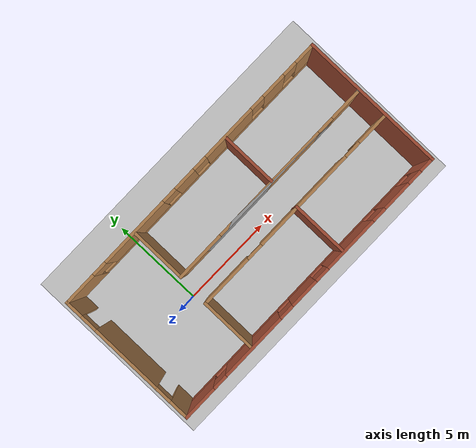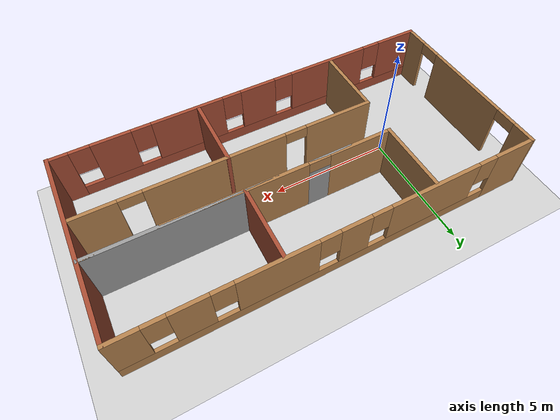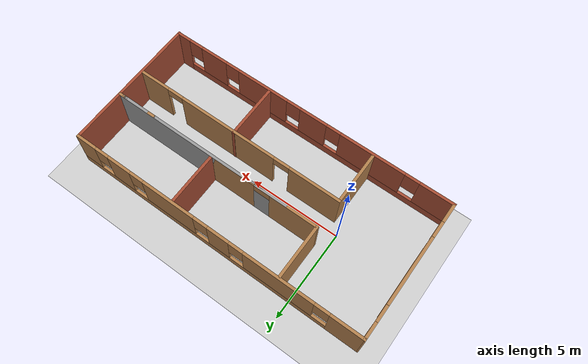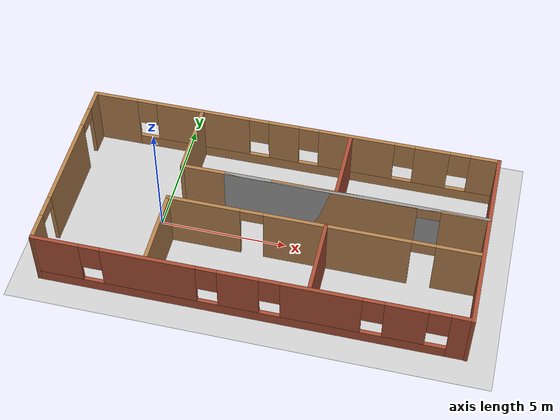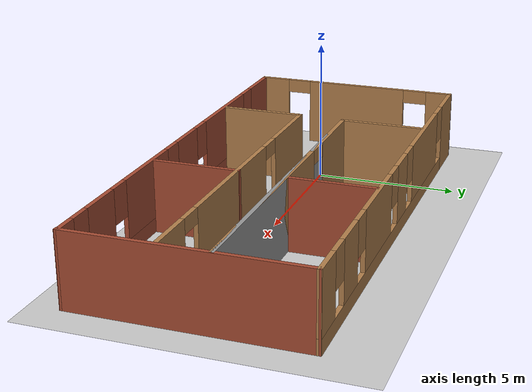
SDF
<sdf version="1.7">
 <world name="default">
  <light name="sun" type="directional">
   <pose>0 0 10 0 -0 0</pose>
   <diffuse>0.8 0.8 0.8 1</diffuse>
   <specular>0.2 0.2 0.2 1</specular>
   <attenuation>
    <range>1000</range>
    <constant>0.9</constant>
    <linear>0.01</linear>
    <quadratic>0.001</quadratic>
   </attenuation>
   <direction>-0.5 0.1 -0.9</direction>
   <spot><inner_angle>0</inner_angle><outer_angle>0</outer_angle><falloff>0</falloff></spot>
  </light>
  <model name="ground_plane">
   <static>1</static>
   <link name="link">
    <collision name="collision">
     <geometry><plane><normal>0 0 1</normal><size>100 100</size></plane></geometry>
     <surface><friction><ode><mu>100</mu><mu2>50</mu2></ode></friction></surface>
    </collision>
    <visual name="visual">
     <cast_shadows>0</cast_shadows>
     <geometry><plane><normal>0 0 1</normal><size>100 100</size></plane></geometry>
     <material>
      <script><uri>file://media/materials/scripts/gazebo.material</uri><name>Gazebo/Grey</name></script>
     </material>
    </visual>
   </link>
  </model>
  <gravity>0 0 -9.8</gravity>
  <magnetic_field>6e-06 2.3e-05 -4.2e-05</magnetic_field>
  <atmosphere type="adiabatic"/>
  <physics type="ode">
   <max_step_size>0.001</max_step_size>
   <real_time_factor>1</real_time_factor>
   <real_time_update_rate>1000</real_time_update_rate>
  </physics>
  <scene><ambient>0.4 0.4 0.4 1</ambient><background>0.7 0.7 0.7 1</background><shadows>1</shadows></scene>
  <spherical_coordinates>
   <surface_model>EARTH_WGS84</surface_model>
   <latitude_deg>0</latitude_deg>
   <longitude_deg>0</longitude_deg>
   <elevation>0</elevation>
   <heading_deg>0</heading_deg>
  </spherical_coordinates>
  <model name="newmodel_hosp">
   <pose>4.38139 0.212327 0 0 -0 0</pose>
   <link name="Wall_33">
    <pose>-0 3.8 0 0 -0 0.002139</pose>
    <visual name="Wall_33_Visual_0">
     <pose>-7.33684 0 1.25 0 -0 0</pose>
     <geometry><box><size>1.82633 0.15 2.5</size></box></geometry>
     <material>
      <script><uri>file://media/materials/scripts/gazebo.material</uri><name>Gazebo/Wood</name></script>
      <ambient>1 1 1 1</ambient>
     </material>
     <meta><layer>0</layer></meta>
    </visual>
    <collision name="Wall_33_Collision_0">
     <geometry><box><size>1.82633 0.15 2.5</size></box></geometry>
     <pose>-7.33684 0 1.25 0 -0 0</pose>
    </collision>
    <visual name="Wall_33_Visual_1">
     <pose>0.913164 0 0.25 0 -0 0</pose>
     <geometry><box><size>14.6737 0.15 0.5</size></box></geometry>
     <material>
      <script><uri>file://media/materials/scripts/gazebo.material</uri><name>Gazebo/Wood</name></script>
      <ambient>1 1 1 1</ambient>
     </material>
     <meta><layer>0</layer></meta>
    </visual>
    <collision name="Wall_33_Collision_1">
     <geometry><box><size>14.6737 0.15 0.5</size></box></geometry>
     <pose>0.913164 0 0.25 0 -0 0</pose>
    </collision>
    <visual name="Wall_33_Visual_2">
     <pose>-3.69759 0 1.5 0 -0 0</pose>
     <geometry><box><size>3.85216 0.15 2</size></box></geometry>
     <material>
      <script><uri>file://media/materials/scripts/gazebo.material</uri><name>Gazebo/Wood</name></script>
      <ambient>1 1 1 1</ambient>
     </material>
     <meta><layer>0</layer></meta>
    </visual>
    <collision name="Wall_33_Collision_2">
     <geometry><box><size>3.85216 0.15 2</size></box></geometry>
     <pose>-3.69759 0 1.5 0 -0 0</pose>
    </collision>
    <visual name="Wall_33_Visual_3">
     <pose>-0.357016 0 1.5 0 -0 0</pose>
     <geometry><box><size>1.22899 0.15 2</size></box></geometry>
     <material>
      <script><uri>file://media/materials/scripts/gazebo.material</uri><name>Gazebo/Wood</name></script>
      <ambient>1 1 1 1</ambient>
     </material>
     <meta><layer>0</layer></meta>
    </visual>
    <collision name="Wall_33_Collision_3">
     <geometry><box><size>1.22899 0.15 2</size></box></geometry>
     <pose>-0.357016 0 1.5 0 -0 0</pose>
    </collision>
    <visual name="Wall_33_Visual_4">
     <pose>2.57254 0 1.5 0 -0 0</pose>
     <geometry><box><size>3.03013 0.15 2</size></box></geometry>
     <material>
      <script><uri>file://media/materials/scripts/gazebo.material</uri><name>Gazebo/Wood</name></script>
      <ambient>1 1 1 1</ambient>
     </material>
     <meta><layer>0</layer></meta>
    </visual>
    <collision name="Wall_33_Collision_4">
     <geometry><box><size>3.03013 0.15 2</size></box></geometry>
     <pose>2.57254 0 1.5 0 -0 0</pose>
    </collision>
    <visual name="Wall_33_Visual_5">
     <pose>5.5721 0 1.5 0 -0 0</pose>
     <geometry><box><size>1.36899 0.15 2</size></box></geometry>
     <material>
      <script><uri>file://media/materials/scripts/gazebo.material</uri><name>Gazebo/Wood</name></script>
      <ambient>1 1 1 1</ambient>
     </material>
     <meta><layer>0</layer></meta>
    </visual>
    <collision name="Wall_33_Collision_5">
     <geometry><box><size>1.36899 0.15 2</size></box></geometry>
     <pose>5.5721 0 1.5 0 -0 0</pose>
    </collision>
    <visual name="Wall_33_Visual_6">
     <pose>7.6533 0 1.5 0 -0 0</pose>
     <geometry><box><size>1.19341 0.15 2</size></box></geometry>
     <material>
      <script><uri>file://media/materials/scripts/gazebo.material</uri><name>Gazebo/Wood</name></script>
      <ambient>1 1 1 1</ambient>
     </material>
     <meta><layer>0</layer></meta>
    </visual>
    <collision name="Wall_33_Collision_6">
     <geometry><box><size>1.19341 0.15 2</size></box></geometry>
     <pose>7.6533 0 1.5 0 -0 0</pose>
    </collision>
    <visual name="Wall_33_Visual_7">
     <pose>-6.02367 0 1.9 0 -0 0</pose>
     <geometry><box><size>0.8 0.15 1.2</size></box></geometry>
     <material>
      <script><uri>file://media/materials/scripts/gazebo.material</uri><name>Gazebo/Wood</name></script>
      <ambient>1 1 1 1</ambient>
     </material>
     <meta><layer>0</layer></meta>
    </visual>
    <collision name="Wall_33_Collision_7">
     <geometry><box><size>0.8 0.15 1.2</size></box></geometry>
     <pose>-6.02367 0 1.9 0 -0 0</pose>
    </collision>
    <visual name="Wall_33_Visual_8">
     <pose>-1.37151 0 1.9 0 -0 0</pose>
     <geometry><box><size>0.8 0.15 1.2</size></box></geometry>
     <material>
      <script><uri>file://media/materials/scripts/gazebo.material</uri><name>Gazebo/Wood</name></script>
      <ambient>1 1 1 1</ambient>
     </material>
     <meta><layer>0</layer></meta>
    </visual>
    <collision name="Wall_33_Collision_8">
     <geometry><box><size>0.8 0.15 1.2</size></box></geometry>
     <pose>-1.37151 0 1.9 0 -0 0</pose>
    </collision>
    <visual name="Wall_33_Visual_9">
     <pose>0.65748 0 1.9 0 -0 0</pose>
     <geometry><box><size>0.8 0.15 1.2</size></box></geometry>
     <material>
      <script><uri>file://media/materials/scripts/gazebo.material</uri><name>Gazebo/Wood</name></script>
      <ambient>1 1 1 1</ambient>
     </material>
     <meta><layer>0</layer></meta>
    </visual>
    <collision name="Wall_33_Collision_9">
     <geometry><box><size>0.8 0.15 1.2</size></box></geometry>
     <pose>0.65748 0 1.9 0 -0 0</pose>
    </collision>
    <visual name="Wall_33_Visual_10">
     <pose>4.48761 0 1.9 0 -0 0</pose>
     <geometry><box><size>0.8 0.15 1.2</size></box></geometry>
     <material>
      <script><uri>file://media/materials/scripts/gazebo.material</uri><name>Gazebo/Wood</name></script>
      <ambient>1 1 1 1</ambient>
     </material>
     <meta><layer>0</layer></meta>
    </visual>
    <collision name="Wall_33_Collision_10">
     <geometry><box><size>0.8 0.15 1.2</size></box></geometry>
     <pose>4.48761 0 1.9 0 -0 0</pose>
    </collision>
    <visual name="Wall_33_Visual_11">
     <pose>6.6566 0 1.9 0 -0 0</pose>
     <geometry><box><size>0.8 0.15 1.2</size></box></geometry>
     <material>
      <script><uri>file://media/materials/scripts/gazebo.material</uri><name>Gazebo/Wood</name></script>
      <ambient>1 1 1 1</ambient>
     </material>
     <meta><layer>0</layer></meta>
    </visual>
    <collision name="Wall_33_Collision_11">
     <geometry><box><size>0.8 0.15 1.2</size></box></geometry>
     <pose>6.6566 0 1.9 0 -0 0</pose>
    </collision>
   </link>
   <link name="Wall_34">
    <collision name="Wall_34_Collision">
     <geometry><box><size>7.75 0.15 2.5</size></box></geometry>
     <pose>0 0 1.25 0 -0 0</pose>
    </collision>
    <visual name="Wall_34_Visual">
     <pose>0 0 1.25 0 -0 0</pose>
     <geometry><box><size>7.75 0.15 2.5</size></box></geometry>
     <material>
      <script><uri>file://media/materials/scripts/gazebo.material</uri><name>Gazebo/Bricks</name></script>
      <ambient>1 1 1 1</ambient>
     </material>
     <meta><layer>0</layer></meta>
    </visual>
    <pose>8.175 -0 0 0 -0 -1.5708</pose>
   </link>
   <link name="Wall_35">
    <pose>-0 -3.8 0 0 -0 -3.13945</pose>
    <visual name="Wall_35_Visual_0">
     <pose>-7.82824 0 1.25 0 -0 0</pose>
     <geometry><box><size>0.843509 0.15 2.5</size></box></geometry>
     <material>
      <script><uri>file://media/materials/scripts/gazebo.material</uri><name>Gazebo/Bricks</name></script>
      <ambient>1 1 1 1</ambient>
     </material>
     <meta><layer>0</layer></meta>
    </visual>
    <collision name="Wall_35_Collision_0">
     <geometry><box><size>0.843509 0.15 2.5</size></box></geometry>
     <pose>-7.82824 0 1.25 0 -0 0</pose>
    </collision>
    <visual name="Wall_35_Visual_1">
     <pose>0.421755 0 0.25 0 -0 0</pose>
     <geometry><box><size>15.6565 0.15 0.5</size></box></geometry>
     <material>
      <script><uri>file://media/materials/scripts/gazebo.material</uri><name>Gazebo/Bricks</name></script>
      <ambient>1 1 1 1</ambient>
     </material>
     <meta><layer>0</layer></meta>
    </visual>
    <collision name="Wall_35_Collision_1">
     <geometry><box><size>15.6565 0.15 0.5</size></box></geometry>
     <pose>0.421755 0 0.25 0 -0 0</pose>
    </collision>
    <visual name="Wall_35_Visual_2">
     <pose>-5.81724 0 1.5 0 -0 0</pose>
     <geometry><box><size>1.57849 0.15 2</size></box></geometry>
     <material>
      <script><uri>file://media/materials/scripts/gazebo.material</uri><name>Gazebo/Bricks</name></script>
      <ambient>1 1 1 1</ambient>
     </material>
     <meta><layer>0</layer></meta>
    </visual>
    <collision name="Wall_35_Collision_2">
     <geometry><box><size>1.57849 0.15 2</size></box></geometry>
     <pose>-5.81724 0 1.5 0 -0 0</pose>
    </collision>
    <visual name="Wall_35_Visual_3">
     <pose>-2.73026 0 1.5 0 -0 0</pose>
     <geometry><box><size>2.99548 0.15 2</size></box></geometry>
     <material>
      <script><uri>file://media/materials/scripts/gazebo.material</uri><name>Gazebo/Bricks</name></script>
      <ambient>1 1 1 1</ambient>
     </material>
     <meta><layer>0</layer></meta>
    </visual>
    <collision name="Wall_35_Collision_3">
     <geometry><box><size>2.99548 0.15 2</size></box></geometry>
     <pose>-2.73026 0 1.5 0 -0 0</pose>
    </collision>
    <visual name="Wall_35_Visual_4">
     <pose>0.34797 0 1.5 0 -0 0</pose>
     <geometry><box><size>1.56097 0.15 2</size></box></geometry>
     <material>
      <script><uri>file://media/materials/scripts/gazebo.material</uri><name>Gazebo/Bricks</name></script>
      <ambient>1 1 1 1</ambient>
     </material>
     <meta><layer>0</layer></meta>
    </visual>
    <collision name="Wall_35_Collision_4">
     <geometry><box><size>1.56097 0.15 2</size></box></geometry>
     <pose>0.34797 0 1.5 0 -0 0</pose>
    </collision>
    <visual name="Wall_35_Visual_5">
     <pose>3.74109 0 1.5 0 -0 0</pose>
     <geometry><box><size>3.62527 0.15 2</size></box></geometry>
     <material>
      <script><uri>file://media/materials/scripts/gazebo.material</uri><name>Gazebo/Bricks</name></script>
      <ambient>1 1 1 1</ambient>
     </material>
     <meta><layer>0</layer></meta>
    </visual>
    <collision name="Wall_35_Collision_5">
     <geometry><box><size>3.62527 0.15 2</size></box></geometry>
     <pose>3.74109 0 1.5 0 -0 0</pose>
    </collision>
    <visual name="Wall_35_Visual_6">
     <pose>7.30186 0 1.5 0 -0 0</pose>
     <geometry><box><size>1.89627 0.15 2</size></box></geometry>
     <material>
      <script><uri>file://media/materials/scripts/gazebo.material</uri><name>Gazebo/Bricks</name></script>
      <ambient>1 1 1 1</ambient>
     </material>
     <meta><layer>0</layer></meta>
    </visual>
    <collision name="Wall_35_Collision_6">
     <geometry><box><size>1.89627 0.15 2</size></box></geometry>
     <pose>7.30186 0 1.5 0 -0 0</pose>
    </collision>
    <visual name="Wall_35_Visual_7">
     <pose>-7.00649 0 1.9 0 -0 0</pose>
     <geometry><box><size>0.8 0.15 1.2</size></box></geometry>
     <material>
      <script><uri>file://media/materials/scripts/gazebo.material</uri><name>Gazebo/Bricks</name></script>
      <ambient>1 1 1 1</ambient>
     </material>
     <meta><layer>0</layer></meta>
    </visual>
    <collision name="Wall_35_Collision_7">
     <geometry><box><size>0.8 0.15 1.2</size></box></geometry>
     <pose>-7.00649 0 1.9 0 -0 0</pose>
    </collision>
    <visual name="Wall_35_Visual_8">
     <pose>-4.628 0 1.9 0 -0 0</pose>
     <geometry><box><size>0.8 0.15 1.2</size></box></geometry>
     <material>
      <script><uri>file://media/materials/scripts/gazebo.material</uri><name>Gazebo/Bricks</name></script>
      <ambient>1 1 1 1</ambient>
     </material>
     <meta><layer>0</layer></meta>
    </visual>
    <collision name="Wall_35_Collision_8">
     <geometry><box><size>0.8 0.15 1.2</size></box></geometry>
     <pose>-4.628 0 1.9 0 -0 0</pose>
    </collision>
    <visual name="Wall_35_Visual_9">
     <pose>-0.832512 0 1.9 0 -0 0</pose>
     <geometry><box><size>0.8 0.15 1.2</size></box></geometry>
     <material>
      <script><uri>file://media/materials/scripts/gazebo.material</uri><name>Gazebo/Bricks</name></script>
      <ambient>1 1 1 1</ambient>
     </material>
     <meta><layer>0</layer></meta>
    </visual>
    <collision name="Wall_35_Collision_9">
     <geometry><box><size>0.8 0.15 1.2</size></box></geometry>
     <pose>-0.832512 0 1.9 0 -0 0</pose>
    </collision>
    <visual name="Wall_35_Visual_10">
     <pose>1.52845 0 1.9 0 -0 0</pose>
     <geometry><box><size>0.8 0.15 1.2</size></box></geometry>
     <material>
      <script><uri>file://media/materials/scripts/gazebo.material</uri><name>Gazebo/Bricks</name></script>
      <ambient>1 1 1 1</ambient>
     </material>
     <meta><layer>0</layer></meta>
    </visual>
    <collision name="Wall_35_Collision_10">
     <geometry><box><size>0.8 0.15 1.2</size></box></geometry>
     <pose>1.52845 0 1.9 0 -0 0</pose>
    </collision>
    <visual name="Wall_35_Visual_11">
     <pose>5.95373 0 1.9 0 -0 0</pose>
     <geometry><box><size>0.8 0.15 1.2</size></box></geometry>
     <material>
      <script><uri>file://media/materials/scripts/gazebo.material</uri><name>Gazebo/Bricks</name></script>
      <ambient>1 1 1 1</ambient>
     </material>
     <meta><layer>0</layer></meta>
    </visual>
    <collision name="Wall_35_Collision_11">
     <geometry><box><size>0.8 0.15 1.2</size></box></geometry>
     <pose>5.95373 0 1.9 0 -0 0</pose>
    </collision>
   </link>
   <link name="Wall_36">
    <pose>-8.175 -0.01749 0 0 -0 1.5708</pose>
    <visual name="Wall_36_Visual_0">
     <pose>-3.31452 0 1.25 0 -0 0</pose>
     <geometry><box><size>1.12097 0.15 2.5</size></box></geometry>
     <material>
      <script><uri>file://media/materials/scripts/gazebo.material</uri><name>Gazebo/Wood</name></script>
      <ambient>1 1 1 1</ambient>
     </material>
     <meta><layer>0</layer></meta>
    </visual>
    <collision name="Wall_36_Collision_0">
     <geometry><box><size>1.12097 0.15 2.5</size></box></geometry>
     <pose>-3.31452 0 1.25 0 -0 0</pose>
    </collision>
    <visual name="Wall_36_Visual_1">
     <pose>0.065872 0 1.25 0 -0 0</pose>
     <geometry><box><size>3.83981 0.15 2.5</size></box></geometry>
     <material>
      <script><uri>file://media/materials/scripts/gazebo.material</uri><name>Gazebo/Wood</name></script>
      <ambient>1 1 1 1</ambient>
     </material>
     <meta><layer>0</layer></meta>
    </visual>
    <collision name="Wall_36_Collision_1">
     <geometry><box><size>3.83981 0.15 2.5</size></box></geometry>
     <pose>0.065872 0 1.25 0 -0 0</pose>
    </collision>
    <visual name="Wall_36_Visual_2">
     <pose>3.38039 0 1.25 0 -0 0</pose>
     <geometry><box><size>0.989225 0.15 2.5</size></box></geometry>
     <material>
      <script><uri>file://media/materials/scripts/gazebo.material</uri><name>Gazebo/Wood</name></script>
      <ambient>1 1 1 1</ambient>
     </material>
     <meta><layer>0</layer></meta>
    </visual>
    <collision name="Wall_36_Collision_2">
     <geometry><box><size>0.989225 0.15 2.5</size></box></geometry>
     <pose>3.38039 0 1.25 0 -0 0</pose>
    </collision>
    <visual name="Wall_36_Visual_3">
     <pose>-2.30403 0 2.25 0 -0 0</pose>
     <geometry><box><size>0.9 0.15 0.5</size></box></geometry>
     <material>
      <script><uri>file://media/materials/scripts/gazebo.material</uri><name>Gazebo/Wood</name></script>
      <ambient>1 1 1 1</ambient>
     </material>
     <meta><layer>0</layer></meta>
    </visual>
    <collision name="Wall_36_Collision_3">
     <geometry><box><size>0.9 0.15 0.5</size></box></geometry>
     <pose>-2.30403 0 2.25 0 -0 0</pose>
    </collision>
    <visual name="Wall_36_Visual_4">
     <pose>2.43578 0 2.25 0 -0 0</pose>
     <geometry><box><size>0.9 0.15 0.5</size></box></geometry>
     <material>
      <script><uri>file://media/materials/scripts/gazebo.material</uri><name>Gazebo/Wood</name></script>
      <ambient>1 1 1 1</ambient>
     </material>
     <meta><layer>0</layer></meta>
    </visual>
    <collision name="Wall_36_Collision_4">
     <geometry><box><size>0.9 0.15 0.5</size></box></geometry>
     <pose>2.43578 0 2.25 0 -0 0</pose>
    </collision>
   </link>
   <link name="Wall_45">
    <collision name="Wall_45_Collision">
     <geometry><box><size>10.25 0.15 2.5</size></box></geometry>
     <pose>0 0 1.25 0 -0 0</pose>
    </collision>
    <visual name="Wall_45_Visual">
     <pose>0 0 1.25 0 -0 0</pose>
     <geometry><box><size>10.25 0.15 2.5</size></box></geometry>
     <material>
      <script><uri>file://media/materials/scripts/gazebo.material</uri><name>Gazebo/Grey</name></script>
      <ambient>1 1 1 1</ambient>
     </material>
     <meta><layer>0</layer></meta>
    </visual>
    <pose>3.08397 0.827569 0 0 -0 0</pose>
   </link>
   <link name="Wall_46">
    <pose>2.20897 0.827569 0 0 -0 3.14159</pose>
    <visual name="Wall_46_Visual_0">
     <pose>-5.07276 0 1.25 0 -0 0</pose>
     <geometry><box><size>1.85447 0.15 2.5</size></box></geometry>
     <material>
      <script><uri>file://media/materials/scripts/gazebo.material</uri><name>Gazebo/Wood</name></script>
      <ambient>1 1 1 1</ambient>
     </material>
     <meta><layer>0</layer></meta>
    </visual>
    <collision name="Wall_46_Collision_0">
     <geometry><box><size>1.85447 0.15 2.5</size></box></geometry>
     <pose>-5.07276 0 1.25 0 -0 0</pose>
    </collision>
    <visual name="Wall_46_Visual_1">
     <pose>-0.424886 0 1.25 0 -0 0</pose>
     <geometry><box><size>5.64128 0.15 2.5</size></box></geometry>
     <material>
      <script><uri>file://media/materials/scripts/gazebo.material</uri><name>Gazebo/Wood</name></script>
      <ambient>1 1 1 1</ambient>
     </material>
     <meta><layer>0</layer></meta>
    </visual>
    <collision name="Wall_46_Collision_1">
     <geometry><box><size>5.64128 0.15 2.5</size></box></geometry>
     <pose>-0.424886 0 1.25 0 -0 0</pose>
    </collision>
    <visual name="Wall_46_Visual_2">
     <pose>4.64788 0 1.25 0 -0 0</pose>
     <geometry><box><size>2.70424 0.15 2.5</size></box></geometry>
     <material>
      <script><uri>file://media/materials/scripts/gazebo.material</uri><name>Gazebo/Wood</name></script>
      <ambient>1 1 1 1</ambient>
     </material>
     <meta><layer>0</layer></meta>
    </visual>
    <collision name="Wall_46_Collision_2">
     <geometry><box><size>2.70424 0.15 2.5</size></box></geometry>
     <pose>4.64788 0 1.25 0 -0 0</pose>
    </collision>
    <visual name="Wall_46_Visual_3">
     <pose>-3.69553 0 2.25 0 -0 0</pose>
     <geometry><box><size>0.9 0.15 0.5</size></box></geometry>
     <material>
      <script><uri>file://media/materials/scripts/gazebo.material</uri><name>Gazebo/Wood</name></script>
      <ambient>1 1 1 1</ambient>
     </material>
     <meta><layer>0</layer></meta>
    </visual>
    <collision name="Wall_46_Collision_3">
     <geometry><box><size>0.9 0.15 0.5</size></box></geometry>
     <pose>-3.69553 0 2.25 0 -0 0</pose>
    </collision>
    <visual name="Wall_46_Visual_4">
     <pose>2.84576 0 2.25 0 -0 0</pose>
     <geometry><box><size>0.9 0.15 0.5</size></box></geometry>
     <material>
      <script><uri>file://media/materials/scripts/gazebo.material</uri><name>Gazebo/Wood</name></script>
      <ambient>1 1 1 1</ambient>
     </material>
     <meta><layer>0</layer></meta>
    </visual>
    <collision name="Wall_46_Collision_4">
     <geometry><box><size>0.9 0.15 0.5</size></box></geometry>
     <pose>2.84576 0 2.25 0 -0 0</pose>
    </collision>
   </link>
   <link name="Wall_48">
    <collision name="Wall_48_Collision">
     <geometry><box><size>3 0.15 2.5</size></box></geometry>
     <pose>0 0 1.25 0 -0 0</pose>
    </collision>
    <visual name="Wall_48_Visual">
     <pose>0 0 1.25 0 -0 0</pose>
     <geometry><box><size>3 0.15 2.5</size></box></geometry>
     <material>
      <script><uri>file://media/materials/scripts/gazebo.material</uri><name>Gazebo/Wood</name></script>
      <ambient>1 1 1 1</ambient>
     </material>
     <meta><layer>0</layer></meta>
    </visual>
    <pose>-3.71603 2.25257 0 0 -0 1.5708</pose>
   </link>
   <link name="Wall_50">
    <collision name="Wall_50_Collision">
     <geometry><box><size>3 0.15 2.5</size></box></geometry>
     <pose>0 0 1.25 0 -0 0</pose>
    </collision>
    <visual name="Wall_50_Visual">
     <pose>0 0 1.25 0 -0 0</pose>
     <geometry><box><size>3 0.15 2.5</size></box></geometry>
     <material>
      <script><uri>file://media/materials/scripts/gazebo.material</uri><name>Gazebo/Wood</name></script>
      <ambient>1 1 1 1</ambient>
     </material>
     <meta><layer>0</layer></meta>
    </visual>
    <pose>-3.81997 -2.26075 0 0 -0 1.5708</pose>
   </link>
   <link name="Wall_51">
    <pose>2.10503 -0.835747 0 0 -0 0</pose>
    <visual name="Wall_51_Visual_0">
     <pose>-4.55218 0 1.25 0 -0 0</pose>
     <geometry><box><size>2.89564 0.15 2.5</size></box></geometry>
     <material>
      <script><uri>file://media/materials/scripts/gazebo.material</uri><name>Gazebo/Wood</name></script>
      <ambient>1 1 1 1</ambient>
     </material>
     <meta><layer>0</layer></meta>
    </visual>
    <collision name="Wall_51_Collision_0">
     <geometry><box><size>2.89564 0.15 2.5</size></box></geometry>
     <pose>-4.55218 0 1.25 0 -0 0</pose>
    </collision>
    <visual name="Wall_51_Visual_1">
     <pose>0.598793 0 1.25 0 -0 0</pose>
     <geometry><box><size>5.6063 0.15 2.5</size></box></geometry>
     <material>
      <script><uri>file://media/materials/scripts/gazebo.material</uri><name>Gazebo/Wood</name></script>
      <ambient>1 1 1 1</ambient>
     </material>
     <meta><layer>0</layer></meta>
    </visual>
    <collision name="Wall_51_Collision_1">
     <geometry><box><size>5.6063 0.15 2.5</size></box></geometry>
     <pose>0.598793 0 1.25 0 -0 0</pose>
    </collision>
    <visual name="Wall_51_Visual_2">
     <pose>5.15097 0 1.25 0 -0 0</pose>
     <geometry><box><size>1.69806 0.15 2.5</size></box></geometry>
     <material>
      <script><uri>file://media/materials/scripts/gazebo.material</uri><name>Gazebo/Wood</name></script>
      <ambient>1 1 1 1</ambient>
     </material>
     <meta><layer>0</layer></meta>
    </visual>
    <collision name="Wall_51_Collision_2">
     <geometry><box><size>1.69806 0.15 2.5</size></box></geometry>
     <pose>5.15097 0 1.25 0 -0 0</pose>
    </collision>
    <visual name="Wall_51_Visual_3">
     <pose>-2.65436 0 2.25 0 -0 0</pose>
     <geometry><box><size>0.9 0.15 0.5</size></box></geometry>
     <material>
      <script><uri>file://media/materials/scripts/gazebo.material</uri><name>Gazebo/Wood</name></script>
      <ambient>1 1 1 1</ambient>
     </material>
     <meta><layer>0</layer></meta>
    </visual>
    <collision name="Wall_51_Collision_3">
     <geometry><box><size>0.9 0.15 0.5</size></box></geometry>
     <pose>-2.65436 0 2.25 0 -0 0</pose>
    </collision>
    <visual name="Wall_51_Visual_4">
     <pose>3.85195 0 2.25 0 -0 0</pose>
     <geometry><box><size>0.9 0.15 0.5</size></box></geometry>
     <material>
      <script><uri>file://media/materials/scripts/gazebo.material</uri><name>Gazebo/Wood</name></script>
      <ambient>1 1 1 1</ambient>
     </material>
     <meta><layer>0</layer></meta>
    </visual>
    <collision name="Wall_51_Collision_4">
     <geometry><box><size>0.9 0.15 0.5</size></box></geometry>
     <pose>3.85195 0 2.25 0 -0 0</pose>
    </collision>
   </link>
   <link name="Wall_53">
    <collision name="Wall_53_Collision">
     <geometry><box><size>3 0.15 2.5</size></box></geometry>
     <pose>0 0 1.25 0 -0 0</pose>
    </collision>
    <visual name="Wall_53_Visual">
     <pose>0 0 1.25 0 -0 0</pose>
     <geometry><box><size>3 0.15 2.5</size></box></geometry>
     <material>
      <script><uri>file://media/materials/scripts/gazebo.material</uri><name>Gazebo/Bricks</name></script>
      <ambient>1 1 1 1</ambient>
     </material>
     <meta><layer>0</layer></meta>
    </visual>
    <pose>2.33653 2.28667 0 0 -0 1.5708</pose>
   </link>
   <link name="Wall_55">
    <collision name="Wall_55_Collision">
     <geometry><box><size>3 0.15 2.5</size></box></geometry>
     <pose>0 0 1.25 0 -0 0</pose>
    </collision>
    <visual name="Wall_55_Visual">
     <pose>0 0 1.25 0 -0 0</pose>
     <geometry><box><size>3 0.15 2.5</size></box></geometry>
     <material>
      <script><uri>file://media/materials/scripts/gazebo.material</uri><name>Gazebo/Bricks</name></script>
      <ambient>1 1 1 1</ambient>
     </material>
     <meta><layer>0</layer></meta>
    </visual>
    <pose>2.28406 -2.24238 0 0 -0 -1.5708</pose>
   </link>
   <static>1</static>
  </model>
 </world>
</sdf>
